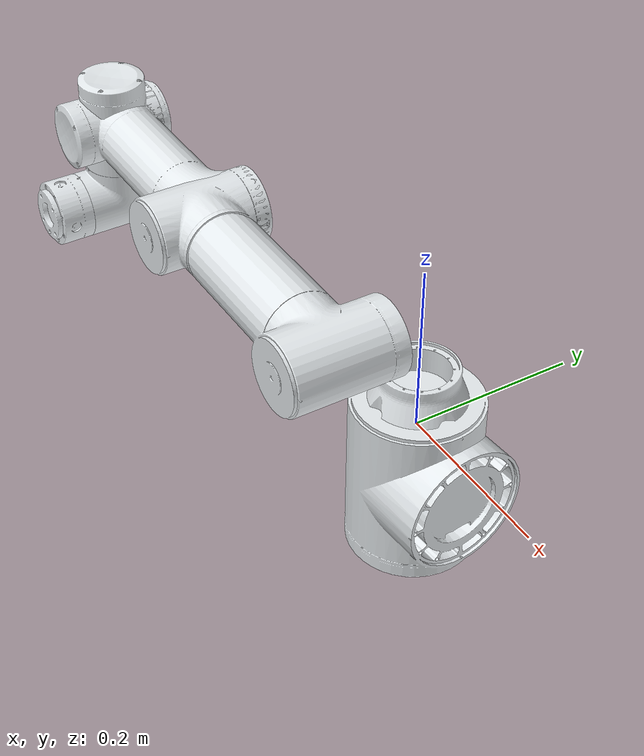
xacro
<robot
  name="fr3_robot_v_5_0">

  <link name="world">
  </link>
  <joint name="world" type="fixed">
    <parent link="world"/>
    <child link="base_link"/>
  </joint>

  <link
    name="base_link">
    <inertial>
      <origin
        xyz="-0.0004939 -0.0004509 0.032214"
        rpy="0 0 0" />
      <mass
        value="0.77817" />
      <inertia
        ixx="0.0013699"
        ixy="1.1455E-05"
        ixz="-1.0521E-05"
        iyy="0.0013695"
        iyz="-9.7516E-06"
        izz="0.0019676" />
    </inertial>
    <visual>
      <origin
        xyz="0 0 0"
        rpy="0 0 0" />
      <geometry>
        <mesh
          filename="/home/siw/ws/src/frcobot_ros2/frcobot_description/meshes/fr3/visual/base_link.DAE" />
      </geometry>
      <material
        name="">
        <color
          rgba="0.89804 0.91765 0.92941 1" />
      </material>
    </visual>
    <collision>
      <origin
        xyz="0 0 0"
        rpy="0 0 0" />
      <geometry>
        <mesh
          filename="/home/siw/ws/src/frcobot_ros2/frcobot_description/meshes/fr3/collision/base_link.STL" />
      </geometry>
    </collision>
  </link>
  <link
    name="shoulder_Link">
    <inertial>
      <origin
        xyz="0.00215579656064623 0.0675269492548249 0.000166380479814213"
        rpy="0 0 0" />
      <mass
        value="2.37326151468102" />
      <inertia
        ixx="0.00464437636424801"
        ixy="3.37752841443834E-06"
        ixz="-6.35167995342536E-06"
        iyy="0.00257740285163467"
        iyz="2.76302522141466E-07"
        izz="0.00472586337172682" />
    </inertial>
    <visual>
      <origin
        xyz="0 0 0"
        rpy="0 0 0" />
      <geometry>
        <mesh
          filename="/home/siw/ws/src/frcobot_ros2/frcobot_description/meshes/fr3/visual/shoulder_Link.DAE" />
      </geometry>
      <material
        name="">
        <color
          rgba="0.898039215686275 0.917647058823529 0.929411764705882 1" />
      </material>
    </visual>
    <collision>
      <origin
        xyz="0 0 0"
        rpy="0 0 0" />
      <geometry>
        <mesh
          filename="/home/siw/ws/src/frcobot_ros2/frcobot_description/meshes/fr3/collision/shoulder_Link.STL" />
      </geometry>
    </collision>
  </link>
  <joint
    name="j1"
    type="revolute">
    <origin
      xyz="0 0 0.074"
      rpy="1.5708 0 -1.494083" />
    <parent
      link="base_link" />
    <child
      link="shoulder_Link" />
    <axis
      xyz="0 1 0" />
    <limit
      lower="-3.0543261"
      upper="3.0543261"
      effort="150"
      velocity="3.15" />
    <calibration
      rising="0"
      falling="0" />
    <dynamics
      damping="0"
      friction="0" />
    <safety_controller
      soft_upper_limit="3.0543261"
      soft_lower_limit="-3.0543261"
      k_position="100"
      k_velocity="40" />
  </joint>
  <link
    name="upperarm_Link">
    <inertial>
      <origin
        xyz="0.14052615364316 3.19832122998853E-06 -0.0673220294744213"
        rpy="0 0 0" />
      <mass
        value="5.20488445581566" />
      <inertia
        ixx="0.0100877805389267"
        ixy="-1.86156773781519E-06"
        ixz="7.99549951803734E-16"
        iyy="0.0114295275122961"
        iyz="-4.02196283458795E-16"
        izz="0.0071309461346971" />
    </inertial>
    <visual>
      <origin
        xyz="0 0 0.13"
        rpy="0 0 0" />
      <geometry>
        <mesh
          filename="/home/siw/ws/src/frcobot_ros2/frcobot_description/meshes/fr3/visual/upperarm_Link.DAE" />
      </geometry>
      <material
        name="">
        <color
          rgba="0.898039215686275 0.917647058823529 0.929411764705882 1" />
      </material>
    </visual>
    <collision>
      <origin
        xyz="0 0 0"
        rpy="0 0 0" />
      <geometry>
        <mesh
          filename="/home/siw/ws/src/frcobot_ros2/frcobot_description/meshes/fr3/collision/upperarm_Link.STL" />
      </geometry>
    </collision>
  </link>
  <joint
    name="j2"
    type="revolute">
    <origin
      xyz="0.048656 0.0652 0.0037401"
      rpy="3.141593 -1.647517 0" />
    <parent
      link="shoulder_Link" />
    <child
      link="upperarm_Link" />
    <axis
      xyz="0 0 1" />
    <limit
      lower="-4.6251"
      upper="1.4835"
      effort="150"
      velocity="3.15" />
    <calibration
      rising="0"
      falling="0" />
    <dynamics
      damping="0"
      friction="0" />
    <safety_controller
      soft_upper_limit="1.4835"
      soft_lower_limit="-4.6251"
      k_position="100"
      k_velocity="40" />
  </joint>
  <link
    name="forearm_Link">
    <inertial>
      <origin
        xyz="0.192635357876029 0.0487629311118559 -4.94516124512836E-06"
        rpy="0 0 0" />
      <mass
        value="2.36119902745376" />
      <inertia
        ixx="0.0035452659318639"
        ixy="-7.3938698701374E-05"
        ixz="7.22720216440109E-07"
        iyy="0.00303455488056437"
        iyz="-2.92335000076181E-07"
        izz="0.00417679573122483" />
    </inertial>
    <visual>
      <origin
        xyz="0 0.0025 0"
        rpy="0 0 0" />
      <geometry>
        <mesh
          filename="/home/siw/ws/src/frcobot_ros2/frcobot_description/meshes/fr3/visual/forearm_Link.DAE" />
      </geometry>
      <material
        name="">
        <color
          rgba="0.898039215686275 0.917647058823529 0.929411764705882 1" />
      </material>
    </visual>
    <collision>
      <origin
        xyz="0 0 0"
        rpy="0 0 0" />
      <geometry>
        <mesh
          filename="/home/siw/ws/src/frcobot_ros2/frcobot_description/meshes/fr3/collision/forearm_Link.STL" />
      </geometry>
    </collision>
  </link>
  <joint
    name="j3"
    type="revolute">
    <origin
      xyz="0.28 0 0"
      rpy="1.5708 0 0" />
    <parent
      link="upperarm_Link" />
    <child
      link="forearm_Link" />
    <axis
      xyz="0 1 0" />
    <limit
      lower="-2.8274"
      upper="2.8274"
      effort="150"
      velocity="3.15" />
    <calibration
      rising="0"
      falling="0" />
    <dynamics
      damping="0"
      friction="0" />
    <safety_controller
      soft_upper_limit="2.8274"
      soft_lower_limit="-2.8274"
      k_position="100"
      k_velocity="40" />
  </joint>
  <link
    name="wrist1_Link">
    <inertial>
      <origin
        xyz="-0.0454134679338634 0.00172297187615156 4.23850043613353E-07"
        rpy="0 0 0" />
      <mass
        value="1.74643097684016" />
      <inertia
        ixx="0.00262730745088668"
        ixy="1.0106539916888E-05"
        ixz="-3.62880005254338E-08"
        iyy="0.00158503705125863"
        iyz="1.43437921244792E-08"
        izz="0.00273363370089196" />
    </inertial>
    <visual>
      <origin
        xyz="0.106 0 0"
        rpy="0 0 0" />
      <geometry>
        <mesh
          filename="/home/siw/ws/src/frcobot_ros2/frcobot_description/meshes/fr3/visual/wrist1_Link.DAE" />
      </geometry>
      <material
        name="">
        <color
          rgba="0.898039215686275 0.917647058823529 0.929411764705882 1" />
      </material>
    </visual>
    <collision>
      <origin
        xyz="0 0 0"
        rpy="0 0 0" />
      <geometry>
        <mesh
          filename="/home/siw/ws/src/frcobot_ros2/frcobot_description/meshes/fr3/collision/wrist1_Link.STL" />
      </geometry>
    </collision>
  </link>
  <joint
    name="j4"
    type="revolute">
    <origin
      xyz="0.24001 -0.004399 0"
      rpy="1.5708 0 1.5708" />
    <parent
      link="forearm_Link" />
    <child
      link="wrist1_Link" />
    <axis
      xyz="1 0 0" />
    <limit
      lower="-4.6251"
      upper="1.4835"
      effort="28"
      velocity="3.2" />
    <calibration
      rising="0"
      falling="0" />
    <dynamics
      damping="0"
      friction="0" />
    <safety_controller
      soft_upper_limit="1.4835"
      soft_lower_limit="-4.6251"
      k_position="100"
      k_velocity="40" />
  </joint>
  <link
    name="wrist2_Link">
    <inertial>
      <origin
        xyz="-0.0454134586122821 0.00172297186091633 4.35135087973705E-07"
        rpy="0 0 0" />
      <mass
        value="1.74643097580082" />
      <inertia
        ixx="0.00262730745010995"
        ixy="1.01065424165879E-05"
        ixz="-3.62775265607763E-08"
        iyy="0.00158503704914344"
        iyz="1.44762939343378E-08"
        izz="0.00273363369934455" />
    </inertial>
    <visual>
      <origin
        xyz="0 0 0"
        rpy="0 0 0" />
      <geometry>
        <mesh
          filename="/home/siw/ws/src/frcobot_ros2/frcobot_description/meshes/fr3/visual/wrist2_Link.DAE" />
      </geometry>
      <material
        name="">
        <color
          rgba="0.898039215686275 0.917647058823529 0.929411764705882 1" />
      </material>
    </visual>
    <collision>
      <origin
        xyz="0 0 0"
        rpy="0 0 0" />
      <geometry>
        <mesh
          filename="/home/siw/ws/src/frcobot_ros2/frcobot_description/meshes/fr3/collision/wrist2_Link.STL" />
      </geometry>
    </collision>
  </link>
  <joint
    name="j5"
    type="revolute">
    <origin
      xyz="0.057 -0.15 0"
      rpy="3.141593 0 -1.5708" />
    <parent
      link="wrist1_Link" />
    <child
      link="wrist2_Link" />
    <axis
      xyz="1 0 0" />
    <limit
      lower="-3.0543"
      upper="3.0543"
      effort="28"
      velocity="3.2" />
    <calibration
      rising="0"
      falling="0" />
    <dynamics
      damping="0"
      friction="0" />
    <safety_controller
      soft_upper_limit="3.0543"
      soft_lower_limit="-3.0543"
      k_position="100"
      k_velocity="40" />
  </joint>
  <link
    name="wrist3_Link">
    <inertial>
      <origin
        xyz="-2.38767308875232E-05 0.0229240957730459 7.5877926720147E-05"
        rpy="0 0 0" />
      <mass
        value="1.05057803931133" />
      <inertia
        ixx="0.000555936779063335"
        ixy="5.09768154107326E-07"
        ixz="1.02477772503103E-06"
        iyy="0.000831680492730721"
        iyz="2.52800063915235E-08"
        izz="0.000554791835939161" />
    </inertial>
    <visual>
      <origin
        xyz="0 0 0"
        rpy="0 0 0" />
      <geometry>
        <mesh
          filename="/home/siw/ws/src/frcobot_ros2/frcobot_description/meshes/fr3/visual/wrist3_Link.DAE" />
      </geometry>
      <material
        name="">
        <color
          rgba="0.898039215686275 0.917647058823529 0.929411764705882 1" />
      </material>
    </visual>
    <collision>
      <origin
        xyz="0 0 0"
        rpy="0 0 0" />
      <geometry>
        <mesh
          filename="/home/siw/ws/src/frcobot_ros2/frcobot_description/meshes/fr3/collision/wrist3_Link.STL" />
      </geometry>
    </collision>
  </link>
  <joint
    name="j6"
    type="revolute">
    <origin
      xyz="-0.048801 -0.0532 0"
      rpy="3.1416 -0.5 0" />
    <parent
      link="wrist2_Link" />
    <child
      link="wrist3_Link" />
    <axis
      xyz="0 1 0" />
    <limit
      lower="-3.0543"
      upper="3.0543"
      effort="28"
      velocity="3.2" />
    <calibration
      rising="0"
      falling="0" />
    <dynamics
      damping="0"
      friction="0" />
    <safety_controller
      soft_upper_limit="3.0543"
      soft_lower_limit="-3.0543"
      k_position="100"
      k_velocity="40" />
  </joint>
</robot>
